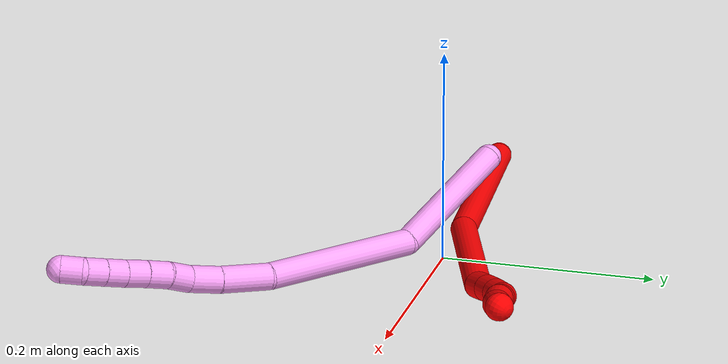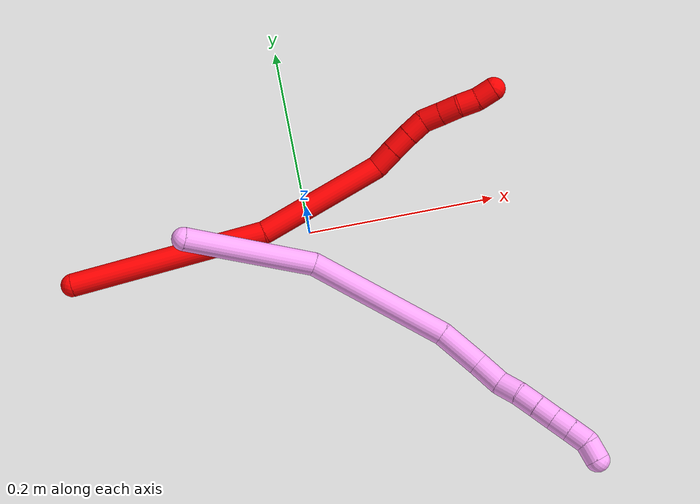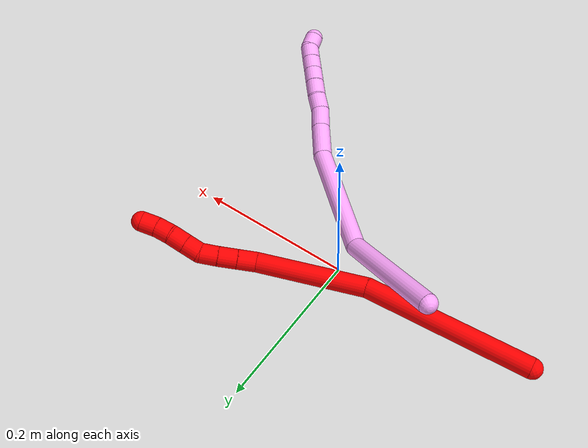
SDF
<sdf version="1.7">
 <world name="default">
  <model name="2">
   <static>0</static>
   <link name="2">
    <collision name="collision-cylinder-e_1_1_4">
     <pose>0.08205 0.028213 -0.058951 -2.69522 0.898183 -2.26132</pose>
     <geometry><cylinder><radius>0.0125</radius><length>0.209794</length></cylinder></geometry>
     <surface>
      <friction><ode><mu>1.16</mu><mu2>1.16</mu2><slip1>0</slip1><slip2>0</slip2></ode></friction>
      <contact><ode><kp>1e+06</kp><kd>1</kd><max_vel>0</max_vel><min_depth>0.001</min_depth></ode></contact>
     </surface>
    </collision>
    <visual name="visual-cylinder-e_1_1_4">
     <pose>0.08205 0.028213 -0.058951 -2.69522 0.898183 -2.26132</pose>
     <geometry><cylinder><radius>0.0125</radius><length>0.209794</length></cylinder></geometry>
     <material><ambient>1 0 0 1</ambient></material>
    </visual>
    <collision name="collision-cylinder-e_2_4_5">
     <pose>0.206092 0.074731 -0.170256 -2.80524 0.648044 -2.2055</pose>
     <geometry><cylinder><radius>0.0125</radius><length>0.139132</length></cylinder></geometry>
     <surface>
      <friction><ode><mu>1.16</mu><mu2>1.16</mu2><slip1>0</slip1><slip2>0</slip2></ode></friction>
      <contact><ode><kp>1e+06</kp><kd>1</kd><max_vel>0</max_vel><min_depth>0.001</min_depth></ode></contact>
     </surface>
    </collision>
    <visual name="visual-cylinder-e_2_4_5">
     <pose>0.206092 0.074731 -0.170256 -2.80524 0.648044 -2.2055</pose>
     <geometry><cylinder><radius>0.0125</radius><length>0.139132</length></cylinder></geometry>
     <material><ambient>1 0 0 1</ambient></material>
    </visual>
    <collision name="collision-cylinder-e_3_5_6">
     <pose>0.25214 0.098908 -0.232823 -2.61978 0.331608 -1.11974</pose>
     <geometry><cylinder><radius>0.0125</radius><length>0.024917</length></cylinder></geometry>
     <surface>
      <friction><ode><mu>1.16</mu><mu2>1.16</mu2><slip1>0</slip1><slip2>0</slip2></ode></friction>
      <contact><ode><kp>1e+06</kp><kd>1</kd><max_vel>0</max_vel><min_depth>0.001</min_depth></ode></contact>
     </surface>
    </collision>
    <visual name="visual-cylinder-e_3_5_6">
     <pose>0.25214 0.098908 -0.232823 -2.61978 0.331608 -1.11974</pose>
     <geometry><cylinder><radius>0.0125</radius><length>0.024917</length></cylinder></geometry>
     <material><ambient>1 0 0 1</ambient></material>
    </visual>
    <collision name="collision-cylinder-e_4_6_7">
     <pose>0.260304 0.110047 -0.252635 -2.63971 0.358893 -1.23165</pose>
     <geometry><cylinder><radius>0.0125</radius><length>0.023391</length></cylinder></geometry>
     <surface>
      <friction><ode><mu>1.16</mu><mu2>1.16</mu2><slip1>0</slip1><slip2>0</slip2></ode></friction>
      <contact><ode><kp>1e+06</kp><kd>1</kd><max_vel>0</max_vel><min_depth>0.001</min_depth></ode></contact>
     </surface>
    </collision>
    <visual name="visual-cylinder-e_4_6_7">
     <pose>0.260304 0.110047 -0.252635 -2.63971 0.358893 -1.23165</pose>
     <geometry><cylinder><radius>0.0125</radius><length>0.023391</length></cylinder></geometry>
     <material><ambient>1 0 0 1</ambient></material>
    </visual>
    <collision name="collision-cylinder-e_5_7_8">
     <pose>0.268668 0.120168 -0.270877 -2.62993 0.405658 -1.33261</pose>
     <geometry><cylinder><radius>0.0125</radius><length>0.021573</length></cylinder></geometry>
     <surface>
      <friction><ode><mu>1.16</mu><mu2>1.16</mu2><slip1>0</slip1><slip2>0</slip2></ode></friction>
      <contact><ode><kp>1e+06</kp><kd>1</kd><max_vel>0</max_vel><min_depth>0.001</min_depth></ode></contact>
     </surface>
    </collision>
    <visual name="visual-cylinder-e_5_7_8">
     <pose>0.268668 0.120168 -0.270877 -2.62993 0.405658 -1.33261</pose>
     <geometry><cylinder><radius>0.0125</radius><length>0.021573</length></cylinder></geometry>
     <material><ambient>1 0 0 1</ambient></material>
    </visual>
    <collision name="collision-cylinder-e_6_8_9">
     <pose>0.279511 0.130794 -0.284959 -2.32657 0.692909 -1.39298</pose>
     <geometry><cylinder><radius>0.0125</radius><length>0.02062</length></cylinder></geometry>
     <surface>
      <friction><ode><mu>1.16</mu><mu2>1.16</mu2><slip1>0</slip1><slip2>0</slip2></ode></friction>
      <contact><ode><kp>1e+06</kp><kd>1</kd><max_vel>0</max_vel><min_depth>0.001</min_depth></ode></contact>
     </surface>
    </collision>
    <visual name="visual-cylinder-e_6_8_9">
     <pose>0.279511 0.130794 -0.284959 -2.32657 0.692909 -1.39298</pose>
     <geometry><cylinder><radius>0.0125</radius><length>0.02062</length></cylinder></geometry>
     <material><ambient>1 0 0 1</ambient></material>
    </visual>
    <collision name="collision-cylinder-e_7_9_10">
     <pose>0.292337 0.142726 -0.295693 -2.28079 0.65523 -1.27449</pose>
     <geometry><cylinder><radius>0.0125</radius><length>0.020485</length></cylinder></geometry>
     <surface>
      <friction><ode><mu>1.16</mu><mu2>1.16</mu2><slip1>0</slip1><slip2>0</slip2></ode></friction>
      <contact><ode><kp>1e+06</kp><kd>1</kd><max_vel>0</max_vel><min_depth>0.001</min_depth></ode></contact>
     </surface>
    </collision>
    <visual name="visual-cylinder-e_7_9_10">
     <pose>0.292337 0.142726 -0.295693 -2.28079 0.65523 -1.27449</pose>
     <geometry><cylinder><radius>0.0125</radius><length>0.020485</length></cylinder></geometry>
     <material><ambient>1 0 0 1</ambient></material>
    </visual>
    <collision name="collision-cylinder-e_8_10_11">
     <pose>0.305637 0.153062 -0.306717 -2.51166 0.783093 -1.80542</pose>
     <geometry><cylinder><radius>0.0125</radius><length>0.020011</length></cylinder></geometry>
     <surface>
      <friction><ode><mu>1.16</mu><mu2>1.16</mu2><slip1>0</slip1><slip2>0</slip2></ode></friction>
      <contact><ode><kp>1e+06</kp><kd>1</kd><max_vel>0</max_vel><min_depth>0.001</min_depth></ode></contact>
     </surface>
    </collision>
    <visual name="visual-cylinder-e_8_10_11">
     <pose>0.305637 0.153062 -0.306717 -2.51166 0.783093 -1.80542</pose>
     <geometry><cylinder><radius>0.0125</radius><length>0.020011</length></cylinder></geometry>
     <material><ambient>1 0 0 1</ambient></material>
    </visual>
    <collision name="collision-cylinder-e_9_11_2">
     <pose>0.318007 0.162213 -0.319363 -2.51814 0.557538 -1.45257</pose>
     <geometry><cylinder><radius>0.0125</radius><length>0.020078</length></cylinder></geometry>
     <surface>
      <friction><ode><mu>1.16</mu><mu2>1.16</mu2><slip1>0</slip1><slip2>0</slip2></ode></friction>
      <contact><ode><kp>1e+06</kp><kd>1</kd><max_vel>0</max_vel><min_depth>0.001</min_depth></ode></contact>
     </surface>
    </collision>
    <visual name="visual-cylinder-e_9_11_2">
     <pose>0.318007 0.162213 -0.319363 -2.51814 0.557538 -1.45257</pose>
     <geometry><cylinder><radius>0.0125</radius><length>0.020078</length></cylinder></geometry>
     <material><ambient>1 0 0 1</ambient></material>
    </visual>
    <collision name="collision-sphere-2">
     <pose>0.323319 0.167186 -0.326279 0 -0 0</pose>
     <geometry><sphere><radius>0.0125</radius></sphere></geometry>
     <surface>
      <friction><ode><mu>1.16</mu><mu2>1.16</mu2><slip1>0</slip1><slip2>0</slip2></ode></friction>
      <contact><ode><kp>1e+06</kp><kd>1</kd><max_vel>0</max_vel><min_depth>0.001</min_depth></ode></contact>
     </surface>
    </collision>
    <visual name="visual-sphere-2">
     <pose>0.323319 0.167186 -0.326279 0 -0 0</pose>
     <geometry><sphere><radius>0.0125</radius></sphere></geometry>
     <material><ambient>1 0 0 1</ambient></material>
    </visual>
    <collision name="collision-sphere-11">
     <pose>0.312696 0.157239 -0.312447 0 -0 0</pose>
     <geometry><sphere><radius>0.0125</radius></sphere></geometry>
     <surface>
      <friction><ode><mu>1.16</mu><mu2>1.16</mu2><slip1>0</slip1><slip2>0</slip2></ode></friction>
      <contact><ode><kp>1e+06</kp><kd>1</kd><max_vel>0</max_vel><min_depth>0.001</min_depth></ode></contact>
     </surface>
    </collision>
    <visual name="visual-sphere-11">
     <pose>0.312696 0.157239 -0.312447 0 -0 0</pose>
     <geometry><sphere><radius>0.0125</radius></sphere></geometry>
     <material><ambient>1 0 0 1</ambient></material>
    </visual>
    <collision name="collision-sphere-10">
     <pose>0.298579 0.148884 -0.300987 0 -0 0</pose>
     <geometry><sphere><radius>0.0125</radius></sphere></geometry>
     <surface>
      <friction><ode><mu>1.16</mu><mu2>1.16</mu2><slip1>0</slip1><slip2>0</slip2></ode></friction>
      <contact><ode><kp>1e+06</kp><kd>1</kd><max_vel>0</max_vel><min_depth>0.001</min_depth></ode></contact>
     </surface>
    </collision>
    <visual name="visual-sphere-10">
     <pose>0.298579 0.148884 -0.300987 0 -0 0</pose>
     <geometry><sphere><radius>0.0125</radius></sphere></geometry>
     <material><ambient>1 0 0 1</ambient></material>
    </visual>
    <collision name="collision-sphere-9">
     <pose>0.286096 0.136567 -0.2904 0 -0 0</pose>
     <geometry><sphere><radius>0.0125</radius></sphere></geometry>
     <surface>
      <friction><ode><mu>1.16</mu><mu2>1.16</mu2><slip1>0</slip1><slip2>0</slip2></ode></friction>
      <contact><ode><kp>1e+06</kp><kd>1</kd><max_vel>0</max_vel><min_depth>0.001</min_depth></ode></contact>
     </surface>
    </collision>
    <visual name="visual-sphere-9">
     <pose>0.286096 0.136567 -0.2904 0 -0 0</pose>
     <geometry><sphere><radius>0.0125</radius></sphere></geometry>
     <material><ambient>1 0 0 1</ambient></material>
    </visual>
    <collision name="collision-sphere-4">
     <pose>0.1641 0.056426 -0.117901 0 -0 0</pose>
     <geometry><sphere><radius>0.0125</radius></sphere></geometry>
     <surface>
      <friction><ode><mu>1.16</mu><mu2>1.16</mu2><slip1>0</slip1><slip2>0</slip2></ode></friction>
      <contact><ode><kp>1e+06</kp><kd>1</kd><max_vel>0</max_vel><min_depth>0.001</min_depth></ode></contact>
     </surface>
    </collision>
    <visual name="visual-sphere-4">
     <pose>0.1641 0.056426 -0.117901 0 -0 0</pose>
     <geometry><sphere><radius>0.0125</radius></sphere></geometry>
     <material><ambient>1 0 0 1</ambient></material>
    </visual>
    <collision name="collision-sphere-1">
     <geometry><sphere><radius>0.0125</radius></sphere></geometry>
     <surface>
      <friction><ode><mu>1.16</mu><mu2>1.16</mu2><slip1>0</slip1><slip2>0</slip2></ode></friction>
      <contact><ode><kp>1e+06</kp><kd>1</kd><max_vel>0</max_vel><min_depth>0.001</min_depth></ode></contact>
     </surface>
    </collision>
    <visual name="visual-sphere-1">
     <geometry><sphere><radius>0.0125</radius></sphere></geometry>
     <material><ambient>1 0 0 1</ambient></material>
    </visual>
    <collision name="collision-sphere-8">
     <pose>0.272925 0.125021 -0.279519 0 -0 0</pose>
     <geometry><sphere><radius>0.0125</radius></sphere></geometry>
     <surface>
      <friction><ode><mu>1.16</mu><mu2>1.16</mu2><slip1>0</slip1><slip2>0</slip2></ode></friction>
      <contact><ode><kp>1e+06</kp><kd>1</kd><max_vel>0</max_vel><min_depth>0.001</min_depth></ode></contact>
     </surface>
    </collision>
    <visual name="visual-sphere-8">
     <pose>0.272925 0.125021 -0.279519 0 -0 0</pose>
     <geometry><sphere><radius>0.0125</radius></sphere></geometry>
     <material><ambient>1 0 0 1</ambient></material>
    </visual>
    <collision name="collision-sphere-5">
     <pose>0.248084 0.093036 -0.222611 0 -0 0</pose>
     <geometry><sphere><radius>0.0125</radius></sphere></geometry>
     <surface>
      <friction><ode><mu>1.16</mu><mu2>1.16</mu2><slip1>0</slip1><slip2>0</slip2></ode></friction>
      <contact><ode><kp>1e+06</kp><kd>1</kd><max_vel>0</max_vel><min_depth>0.001</min_depth></ode></contact>
     </surface>
    </collision>
    <visual name="visual-sphere-5">
     <pose>0.248084 0.093036 -0.222611 0 -0 0</pose>
     <geometry><sphere><radius>0.0125</radius></sphere></geometry>
     <material><ambient>1 0 0 1</ambient></material>
    </visual>
    <collision name="collision-sphere-6">
     <pose>0.256196 0.104779 -0.243035 0 -0 0</pose>
     <geometry><sphere><radius>0.0125</radius></sphere></geometry>
     <surface>
      <friction><ode><mu>1.16</mu><mu2>1.16</mu2><slip1>0</slip1><slip2>0</slip2></ode></friction>
      <contact><ode><kp>1e+06</kp><kd>1</kd><max_vel>0</max_vel><min_depth>0.001</min_depth></ode></contact>
     </surface>
    </collision>
    <visual name="visual-sphere-6">
     <pose>0.256196 0.104779 -0.243035 0 -0 0</pose>
     <geometry><sphere><radius>0.0125</radius></sphere></geometry>
     <material><ambient>1 0 0 1</ambient></material>
    </visual>
    <collision name="collision-sphere-7">
     <pose>0.264412 0.115316 -0.262235 0 -0 0</pose>
     <geometry><sphere><radius>0.0125</radius></sphere></geometry>
     <surface>
      <friction><ode><mu>1.16</mu><mu2>1.16</mu2><slip1>0</slip1><slip2>0</slip2></ode></friction>
      <contact><ode><kp>1e+06</kp><kd>1</kd><max_vel>0</max_vel><min_depth>0.001</min_depth></ode></contact>
     </surface>
    </collision>
    <visual name="visual-sphere-7">
     <pose>0.264412 0.115316 -0.262235 0 -0 0</pose>
     <geometry><sphere><radius>0.0125</radius></sphere></geometry>
     <material><ambient>1 0 0 1</ambient></material>
    </visual>
    <inertial>
     <pose>0.176615 0.071776 -0.156185 0 -0 0</pose>
     <mass>0.5</mass>
     <inertia>
      <ixx>-0.00092</ixx>
      <ixy>0</ixy>
      <ixz>0</ixz>
      <iyy>0.000298</iyy>
      <iyz>0</iyz>
      <izz>-0.001054</izz>
     </inertia>
    </inertial>
   </link>
   <pose>-0.256649 -0.008454 0.011484 1.39183 0.204518 -0.56583</pose>
  </model>
  <model name="4">
   <static>0</static>
   <link name="4">
    <collision name="collision-cylinder-e_1_1_4">
     <pose>-0.008359 -0.025098 0.065904 0.363864 -0.117982 -0.021729</pose>
     <geometry><cylinder><radius>0.0125</radius><length>0.14203</length></cylinder></geometry>
     <surface>
      <friction><ode><mu>1.16</mu><mu2>1.16</mu2><slip1>0</slip1><slip2>0</slip2></ode></friction>
      <contact><ode><kp>1e+06</kp><kd>1</kd><max_vel>0</max_vel><min_depth>0.001</min_depth></ode></contact>
     </surface>
    </collision>
    <visual name="visual-cylinder-e_1_1_4">
     <pose>-0.008359 -0.025098 0.065904 0.363864 -0.117982 -0.021729</pose>
     <geometry><cylinder><radius>0.0125</radius><length>0.14203</length></cylinder></geometry>
     <material><ambient>1 0.65098 0.996078 1</ambient></material>
    </visual>
    <collision name="collision-cylinder-e_2_4_5">
     <pose>0.007946 -0.066171 0.203086 0.220482 0.325638 0.036363</pose>
     <geometry><cylinder><radius>0.0125</radius><length>0.154195</length></cylinder></geometry>
     <surface>
      <friction><ode><mu>1.16</mu><mu2>1.16</mu2><slip1>0</slip1><slip2>0</slip2></ode></friction>
      <contact><ode><kp>1e+06</kp><kd>1</kd><max_vel>0</max_vel><min_depth>0.001</min_depth></ode></contact>
     </surface>
    </collision>
    <visual name="visual-cylinder-e_2_4_5">
     <pose>0.007946 -0.066171 0.203086 0.220482 0.325638 0.036363</pose>
     <geometry><cylinder><radius>0.0125</radius><length>0.154195</length></cylinder></geometry>
     <material><ambient>1 0.65098 0.996078 1</ambient></material>
    </visual>
    <collision name="collision-cylinder-e_3_5_6">
     <pose>0.043868 -0.083142 0.295613 0.046831 0.486711 0.011629</pose>
     <geometry><cylinder><radius>0.0125</radius><length>0.048134</length></cylinder></geometry>
     <surface>
      <friction><ode><mu>1.16</mu><mu2>1.16</mu2><slip1>0</slip1><slip2>0</slip2></ode></friction>
      <contact><ode><kp>1e+06</kp><kd>1</kd><max_vel>0</max_vel><min_depth>0.001</min_depth></ode></contact>
     </surface>
    </collision>
    <visual name="visual-cylinder-e_3_5_6">
     <pose>0.043868 -0.083142 0.295613 0.046831 0.486711 0.011629</pose>
     <geometry><cylinder><radius>0.0125</radius><length>0.048134</length></cylinder></geometry>
     <material><ambient>1 0.65098 0.996078 1</ambient></material>
    </visual>
    <collision name="collision-cylinder-e_4_6_7">
     <pose>0.063343 -0.08476 0.329359 0.049789 0.581168 0.014892</pose>
     <geometry><cylinder><radius>0.0125</radius><length>0.029942</length></cylinder></geometry>
     <surface>
      <friction><ode><mu>1.16</mu><mu2>1.16</mu2><slip1>0</slip1><slip2>0</slip2></ode></friction>
      <contact><ode><kp>1e+06</kp><kd>1</kd><max_vel>0</max_vel><min_depth>0.001</min_depth></ode></contact>
     </surface>
    </collision>
    <visual name="visual-cylinder-e_4_6_7">
     <pose>0.063343 -0.08476 0.329359 0.049789 0.581168 0.014892</pose>
     <geometry><cylinder><radius>0.0125</radius><length>0.029942</length></cylinder></geometry>
     <material><ambient>1 0.65098 0.996078 1</ambient></material>
    </visual>
    <collision name="collision-cylinder-e_5_7_8">
     <pose>0.078472 -0.088749 0.350053 0.389633 0.662277 0.135468</pose>
     <geometry><cylinder><radius>0.0125</radius><length>0.022472</length></cylinder></geometry>
     <surface>
      <friction><ode><mu>1.16</mu><mu2>1.16</mu2><slip1>0</slip1><slip2>0</slip2></ode></friction>
      <contact><ode><kp>1e+06</kp><kd>1</kd><max_vel>0</max_vel><min_depth>0.001</min_depth></ode></contact>
     </surface>
    </collision>
    <visual name="visual-cylinder-e_5_7_8">
     <pose>0.078472 -0.088749 0.350053 0.389633 0.662277 0.135468</pose>
     <geometry><cylinder><radius>0.0125</radius><length>0.022472</length></cylinder></geometry>
     <material><ambient>1 0.65098 0.996078 1</ambient></material>
    </visual>
    <collision name="collision-cylinder-e_6_8_9">
     <pose>0.091638 -0.09398 0.36735 0.202233 0.592805 0.061953</pose>
     <geometry><cylinder><radius>0.0125</radius><length>0.0224</length></cylinder></geometry>
     <surface>
      <friction><ode><mu>1.16</mu><mu2>1.16</mu2><slip1>0</slip1><slip2>0</slip2></ode></friction>
      <contact><ode><kp>1e+06</kp><kd>1</kd><max_vel>0</max_vel><min_depth>0.001</min_depth></ode></contact>
     </surface>
    </collision>
    <visual name="visual-cylinder-e_6_8_9">
     <pose>0.091638 -0.09398 0.36735 0.202233 0.592805 0.061953</pose>
     <geometry><cylinder><radius>0.0125</radius><length>0.0224</length></cylinder></geometry>
     <material><ambient>1 0.65098 0.996078 1</ambient></material>
    </visual>
    <collision name="collision-cylinder-e_7_9_10">
     <pose>0.103451 -0.097386 0.385118 0.175833 0.562873 0.050956</pose>
     <geometry><cylinder><radius>0.0125</radius><length>0.020822</length></cylinder></geometry>
     <surface>
      <friction><ode><mu>1.16</mu><mu2>1.16</mu2><slip1>0</slip1><slip2>0</slip2></ode></friction>
      <contact><ode><kp>1e+06</kp><kd>1</kd><max_vel>0</max_vel><min_depth>0.001</min_depth></ode></contact>
     </surface>
    </collision>
    <visual name="visual-cylinder-e_7_9_10">
     <pose>0.103451 -0.097386 0.385118 0.175833 0.562873 0.050956</pose>
     <geometry><cylinder><radius>0.0125</radius><length>0.020822</length></cylinder></geometry>
     <material><ambient>1 0.65098 0.996078 1</ambient></material>
    </visual>
    <collision name="collision-cylinder-e_8_10_11">
     <pose>0.114546 -0.100571 0.401949 0.198788 0.587133 0.060274</pose>
     <geometry><cylinder><radius>0.0125</radius><length>0.020001</length></cylinder></geometry>
     <surface>
      <friction><ode><mu>1.16</mu><mu2>1.16</mu2><slip1>0</slip1><slip2>0</slip2></ode></friction>
      <contact><ode><kp>1e+06</kp><kd>1</kd><max_vel>0</max_vel><min_depth>0.001</min_depth></ode></contact>
     </surface>
    </collision>
    <visual name="visual-cylinder-e_8_10_11">
     <pose>0.114546 -0.100571 0.401949 0.198788 0.587133 0.060274</pose>
     <geometry><cylinder><radius>0.0125</radius><length>0.020001</length></cylinder></geometry>
     <material><ambient>1 0.65098 0.996078 1</ambient></material>
    </visual>
    <collision name="collision-cylinder-e_9_11_12">
     <pose>0.125674 -0.103755 0.418261 0.186747 0.592868 0.057189</pose>
     <geometry><cylinder><radius>0.0125</radius><length>0.020001</length></cylinder></geometry>
     <surface>
      <friction><ode><mu>1.16</mu><mu2>1.16</mu2><slip1>0</slip1><slip2>0</slip2></ode></friction>
      <contact><ode><kp>1e+06</kp><kd>1</kd><max_vel>0</max_vel><min_depth>0.001</min_depth></ode></contact>
     </surface>
    </collision>
    <visual name="visual-cylinder-e_9_11_12">
     <pose>0.125674 -0.103755 0.418261 0.186747 0.592868 0.057189</pose>
     <geometry><cylinder><radius>0.0125</radius><length>0.020001</length></cylinder></geometry>
     <material><ambient>1 0.65098 0.996078 1</ambient></material>
    </visual>
    <collision name="collision-cylinder-e_10_12_2">
     <pose>0.137069 -0.102464 0.434045 -0.355018 0.619559 -0.114719</pose>
     <geometry><cylinder><radius>0.0125</radius><length>0.020002</length></cylinder></geometry>
     <surface>
      <friction><ode><mu>1.16</mu><mu2>1.16</mu2><slip1>0</slip1><slip2>0</slip2></ode></friction>
      <contact><ode><kp>1e+06</kp><kd>1</kd><max_vel>0</max_vel><min_depth>0.001</min_depth></ode></contact>
     </surface>
    </collision>
    <visual name="visual-cylinder-e_10_12_2">
     <pose>0.137069 -0.102464 0.434045 -0.355018 0.619559 -0.114719</pose>
     <geometry><cylinder><radius>0.0125</radius><length>0.020002</length></cylinder></geometry>
     <material><ambient>1 0.65098 0.996078 1</ambient></material>
    </visual>
    <collision name="collision-sphere-2">
     <pose>0.142877 -0.099634 0.441679 0 -0 0</pose>
     <geometry><sphere><radius>0.0125</radius></sphere></geometry>
     <surface>
      <friction><ode><mu>1.16</mu><mu2>1.16</mu2><slip1>0</slip1><slip2>0</slip2></ode></friction>
      <contact><ode><kp>1e+06</kp><kd>1</kd><max_vel>0</max_vel><min_depth>0.001</min_depth></ode></contact>
     </surface>
    </collision>
    <visual name="visual-sphere-2">
     <pose>0.142877 -0.099634 0.441679 0 -0 0</pose>
     <geometry><sphere><radius>0.0125</radius></sphere></geometry>
     <material><ambient>1 0.65098 0.996078 1</ambient></material>
    </visual>
    <collision name="collision-sphere-12">
     <pose>0.131262 -0.105295 0.42641 0 -0 0</pose>
     <geometry><sphere><radius>0.0125</radius></sphere></geometry>
     <surface>
      <friction><ode><mu>1.16</mu><mu2>1.16</mu2><slip1>0</slip1><slip2>0</slip2></ode></friction>
      <contact><ode><kp>1e+06</kp><kd>1</kd><max_vel>0</max_vel><min_depth>0.001</min_depth></ode></contact>
     </surface>
    </collision>
    <visual name="visual-sphere-12">
     <pose>0.131262 -0.105295 0.42641 0 -0 0</pose>
     <geometry><sphere><radius>0.0125</radius></sphere></geometry>
     <material><ambient>1 0.65098 0.996078 1</ambient></material>
    </visual>
    <collision name="collision-sphere-11">
     <pose>0.120086 -0.102215 0.410111 0 -0 0</pose>
     <geometry><sphere><radius>0.0125</radius></sphere></geometry>
     <surface>
      <friction><ode><mu>1.16</mu><mu2>1.16</mu2><slip1>0</slip1><slip2>0</slip2></ode></friction>
      <contact><ode><kp>1e+06</kp><kd>1</kd><max_vel>0</max_vel><min_depth>0.001</min_depth></ode></contact>
     </surface>
    </collision>
    <visual name="visual-sphere-11">
     <pose>0.120086 -0.102215 0.410111 0 -0 0</pose>
     <geometry><sphere><radius>0.0125</radius></sphere></geometry>
     <material><ambient>1 0.65098 0.996078 1</ambient></material>
    </visual>
    <collision name="collision-sphere-10">
     <pose>0.109006 -0.098926 0.393787 0 -0 0</pose>
     <geometry><sphere><radius>0.0125</radius></sphere></geometry>
     <surface>
      <friction><ode><mu>1.16</mu><mu2>1.16</mu2><slip1>0</slip1><slip2>0</slip2></ode></friction>
      <contact><ode><kp>1e+06</kp><kd>1</kd><max_vel>0</max_vel><min_depth>0.001</min_depth></ode></contact>
     </surface>
    </collision>
    <visual name="visual-sphere-10">
     <pose>0.109006 -0.098926 0.393787 0 -0 0</pose>
     <geometry><sphere><radius>0.0125</radius></sphere></geometry>
     <material><ambient>1 0.65098 0.996078 1</ambient></material>
    </visual>
    <collision name="collision-sphere-9">
     <pose>0.097896 -0.095846 0.37645 0 -0 0</pose>
     <geometry><sphere><radius>0.0125</radius></sphere></geometry>
     <surface>
      <friction><ode><mu>1.16</mu><mu2>1.16</mu2><slip1>0</slip1><slip2>0</slip2></ode></friction>
      <contact><ode><kp>1e+06</kp><kd>1</kd><max_vel>0</max_vel><min_depth>0.001</min_depth></ode></contact>
     </surface>
    </collision>
    <visual name="visual-sphere-9">
     <pose>0.097896 -0.095846 0.37645 0 -0 0</pose>
     <geometry><sphere><radius>0.0125</radius></sphere></geometry>
     <material><ambient>1 0.65098 0.996078 1</ambient></material>
    </visual>
    <collision name="collision-sphere-4">
     <pose>-0.016718 -0.050196 0.131809 0 -0 0</pose>
     <geometry><sphere><radius>0.0125</radius></sphere></geometry>
     <surface>
      <friction><ode><mu>1.16</mu><mu2>1.16</mu2><slip1>0</slip1><slip2>0</slip2></ode></friction>
      <contact><ode><kp>1e+06</kp><kd>1</kd><max_vel>0</max_vel><min_depth>0.001</min_depth></ode></contact>
     </surface>
    </collision>
    <visual name="visual-sphere-4">
     <pose>-0.016718 -0.050196 0.131809 0 -0 0</pose>
     <geometry><sphere><radius>0.0125</radius></sphere></geometry>
     <material><ambient>1 0.65098 0.996078 1</ambient></material>
    </visual>
    <collision name="collision-sphere-1">
     <geometry><sphere><radius>0.0125</radius></sphere></geometry>
     <surface>
      <friction><ode><mu>1.16</mu><mu2>1.16</mu2><slip1>0</slip1><slip2>0</slip2></ode></friction>
      <contact><ode><kp>1e+06</kp><kd>1</kd><max_vel>0</max_vel><min_depth>0.001</min_depth></ode></contact>
     </surface>
    </collision>
    <visual name="visual-sphere-1">
     <geometry><sphere><radius>0.0125</radius></sphere></geometry>
     <material><ambient>1 0.65098 0.996078 1</ambient></material>
    </visual>
    <collision name="collision-sphere-8">
     <pose>0.085381 -0.092115 0.35825 0 -0 0</pose>
     <geometry><sphere><radius>0.0125</radius></sphere></geometry>
     <surface>
      <friction><ode><mu>1.16</mu><mu2>1.16</mu2><slip1>0</slip1><slip2>0</slip2></ode></friction>
      <contact><ode><kp>1e+06</kp><kd>1</kd><max_vel>0</max_vel><min_depth>0.001</min_depth></ode></contact>
     </surface>
    </collision>
    <visual name="visual-sphere-8">
     <pose>0.085381 -0.092115 0.35825 0 -0 0</pose>
     <geometry><sphere><radius>0.0125</radius></sphere></geometry>
     <material><ambient>1 0.65098 0.996078 1</ambient></material>
    </visual>
    <collision name="collision-sphere-5">
     <pose>0.032611 -0.082146 0.274364 0 -0 0</pose>
     <geometry><sphere><radius>0.0125</radius></sphere></geometry>
     <surface>
      <friction><ode><mu>1.16</mu><mu2>1.16</mu2><slip1>0</slip1><slip2>0</slip2></ode></friction>
      <contact><ode><kp>1e+06</kp><kd>1</kd><max_vel>0</max_vel><min_depth>0.001</min_depth></ode></contact>
     </surface>
    </collision>
    <visual name="visual-sphere-5">
     <pose>0.032611 -0.082146 0.274364 0 -0 0</pose>
     <geometry><sphere><radius>0.0125</radius></sphere></geometry>
     <material><ambient>1 0.65098 0.996078 1</ambient></material>
    </visual>
    <collision name="collision-sphere-6">
     <pose>0.055124 -0.084137 0.316862 0 -0 0</pose>
     <geometry><sphere><radius>0.0125</radius></sphere></geometry>
     <surface>
      <friction><ode><mu>1.16</mu><mu2>1.16</mu2><slip1>0</slip1><slip2>0</slip2></ode></friction>
      <contact><ode><kp>1e+06</kp><kd>1</kd><max_vel>0</max_vel><min_depth>0.001</min_depth></ode></contact>
     </surface>
    </collision>
    <visual name="visual-sphere-6">
     <pose>0.055124 -0.084137 0.316862 0 -0 0</pose>
     <geometry><sphere><radius>0.0125</radius></sphere></geometry>
     <material><ambient>1 0.65098 0.996078 1</ambient></material>
    </visual>
    <collision name="collision-sphere-7">
     <pose>0.071562 -0.085383 0.341857 0 -0 0</pose>
     <geometry><sphere><radius>0.0125</radius></sphere></geometry>
     <surface>
      <friction><ode><mu>1.16</mu><mu2>1.16</mu2><slip1>0</slip1><slip2>0</slip2></ode></friction>
      <contact><ode><kp>1e+06</kp><kd>1</kd><max_vel>0</max_vel><min_depth>0.001</min_depth></ode></contact>
     </surface>
    </collision>
    <visual name="visual-sphere-7">
     <pose>0.071562 -0.085383 0.341857 0 -0 0</pose>
     <geometry><sphere><radius>0.0125</radius></sphere></geometry>
     <material><ambient>1 0.65098 0.996078 1</ambient></material>
    </visual>
    <inertial>
     <pose>0.035125 -0.065142 0.227934 0 -0 0</pose>
     <mass>0.5</mass>
     <inertia>
      <ixx>0.000575</ixx>
      <ixy>0</ixy>
      <ixz>0</ixz>
      <iyy>0.000555</iyy>
      <iyz>0</iyz>
      <izz>0.000104</izz>
     </inertia>
    </inertial>
   </link>
   <pose>-0.128303 0.011625 0.056176 -2.36048 -1.02137 -1.61381</pose>
  </model>
 </world>
</sdf>
